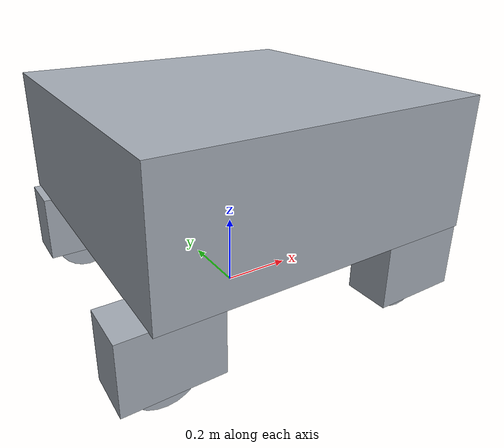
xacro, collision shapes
<?xml version="1.0" encoding="UTF-8"?>
<robot name="robot" xmlns:xacro="http://www.ros.org/wiki/xacro">

  <!-- ======================= 可覆盖参数 ======================= -->
  <xacro:arg name="use_mesh_collision" default="false"/>
  <xacro:arg name="controllers_file" default="$(find steer_wheel_chassis)/config/steer_wheel_controllers.yaml"/>

  <!-- Livox MID-360：默认装在车头 x=0.46, z=0.28，向下俯 13°（0.226893 rad） -->
  <xacro:arg name="use_mid360" default="true"/>
  <xacro:arg name="mid360_x" default="0.46"/>
  <xacro:arg name="mid360_y" default="0.0"/>
  <xacro:arg name="mid360_z" default="0.28"/>
  <xacro:arg name="mid360_pitch" default="0.226893"/>

  <xacro:property name="use_mesh_collision" value="$(arg use_mesh_collision)"/>
  <xacro:property name="controllers_file" value="$(arg controllers_file)"/>
  <xacro:property name="mesh_dir" value="package://steer_wheel_chassis/meshes"/>

  <!-- ======================= 物理参数 ======================= -->
  <!-- 质量 [kg]：按典型工业 AGV 取值（车体含内部电池/电控，转向节含减速器，车轮含轮毂电机） -->
  <xacro:property name="base_mass" value="25.0"/>
  <xacro:property name="leg_mass" value="2.0"/>
  <xacro:property name="wheel_mass" value="4.0"/>
  <!-- 整车 25 + 4×2 + 4×4 = 49 kg -->

  <!-- 车轮实测尺寸 [m] -->
  <xacro:property name="wheel_radius" value="0.0935"/>
  <xacro:property name="wheel_width" value="0.0449"/>
  <xacro:property name="wheel_tire_z" value="-0.0868"/>  <!-- 左前/左后轮胎面中心 (Link_5/7 系) -->

  <!--
    base_link 离地高度 = 四轮中心 z(-0.1594) 的相反数 + 轮半径 0.0935 = 0.2529 m
    实测仿真中轮胎着地时 base_link 为 0.2518（接触面层穿透 1 mm），吻合。
  -->
  <xacro:property name="ground_offset" value="0.2529"/>

  <!-- 关节驱动上限：转向 20 N·m / 3 rad/s，车轮 20 N·m / 20 rad/s (≈1.87 m/s) -->
  <xacro:property name="steer_effort" value="20.0"/>
  <xacro:property name="steer_velocity" value="3.0"/>
  <xacro:property name="wheel_effort" value="20.0"/>
  <xacro:property name="wheel_velocity" value="20.0"/>

  <!-- ======================= 通用宏 ======================= -->

  <!--
    惯性块。
    uixx/... = 单位质量惯性张量 [m²]，对 STL 三角网格做四面体积分、
    再平移到质心后得到，因此 ${uixx * mass} 就是该质量下的真实惯性张量。
    修改 mass 时惯性自动等比缩放，不用重新标定。
  -->
  <xacro:macro name="inertial" params="mass com uixx uixy uixz uiyy uiyz uizz">
    <inertial>
      <origin xyz="${com}" rpy="0 0 0"/>
      <mass value="${mass}"/>
      <inertia ixx="${uixx * mass}" ixy="${uixy * mass}" ixz="${uixz * mass}"
               iyy="${uiyy * mass}" iyz="${uiyz * mass}" izz="${uizz * mass}"/>
    </inertial>
  </xacro:macro>

  <xacro:macro name="mesh_geometry" params="name">
    <geometry>
      <mesh filename="${mesh_dir}/${name}.stl"/>
    </geometry>
  </xacro:macro>

  <!-- 视觉：原始 STL 网格 -->
  <xacro:macro name="mesh_visual" params="name">
    <visual>
      <origin xyz="0 0 0" rpy="0 0 0"/>
      <xacro:mesh_geometry name="${name}"/>
      <material name="robot_grey"/>
    </visual>
  </xacro:macro>

  <!--
    碰撞体：默认用简化体（快、稳定）；
    use_mesh_collision:=true 时改用原始 STL 三角网格（精确，但 15 MB 的 base_link
    网格会让 Gazebo 物理计算非常慢）。
  -->
  <xacro:macro name="box_collision" params="name xyz size">
    <collision>
      <xacro:if value="${use_mesh_collision}">
        <origin xyz="0 0 0" rpy="0 0 0"/>
        <xacro:mesh_geometry name="${name}"/>
      </xacro:if>
      <xacro:unless value="${use_mesh_collision}">
        <origin xyz="${xyz}" rpy="0 0 0"/>
        <geometry>
          <box size="${size}"/>
        </geometry>
      </xacro:unless>
    </collision>
  </xacro:macro>

  <xacro:macro name="cylinder_collision" params="name xyz radius length">
    <collision>
      <xacro:if value="${use_mesh_collision}">
        <origin xyz="0 0 0" rpy="0 0 0"/>
        <xacro:mesh_geometry name="${name}"/>
      </xacro:if>
      <xacro:unless value="${use_mesh_collision}">
        <origin xyz="${xyz}" rpy="0 0 0"/>
        <geometry>
          <cylinder radius="${radius}" length="${length}"/>
        </geometry>
      </xacro:unless>
    </collision>
  </xacro:macro>

  <!-- 车轮碰撞体：轮胎圆柱（半径 = 滚动半径，长度 = 胎面宽），轴向 local z = 轮轴 -->
  <xacro:macro name="tire_collision" params="name z">
    <xacro:cylinder_collision name="${name}" xyz="0 0 ${z}"
                              radius="${wheel_radius}" length="${wheel_width}"/>
  </xacro:macro>

  <!-- 转向关节（绕 z 轴旋转，限位 ±π） -->
  <xacro:macro name="steer_joint" params="name parent child xyz">
    <joint name="${name}" type="revolute">
      <parent link="${parent}"/>
      <child link="${child}"/>
      <origin xyz="${xyz}" rpy="0 0 -0.00000367"/>
      <axis xyz="0 0 1"/>
      <limit lower="-3.14159" upper="3.14159"
             effort="${steer_effort}" velocity="${steer_velocity}"/>
      <dynamics damping="0.2" friction="0.0"/>
    </joint>
  </xacro:macro>

  <!-- 车轮关节（continuous，可无限旋转） -->
  <xacro:macro name="wheel_joint" params="name parent child xyz rpy">
    <joint name="${name}" type="continuous">
      <parent link="${parent}"/>
      <child link="${child}"/>
      <origin xyz="${xyz}" rpy="${rpy}"/>
      <axis xyz="0 0 1"/>
      <limit effort="${wheel_effort}" velocity="${wheel_velocity}"/>
      <dynamics damping="0.05" friction="0.0"/>
    </joint>
  </xacro:macro>

  <!-- ======================= 材质 ======================= -->
  <material name="robot_grey">
    <color rgba="0.65 0.68 0.72 1.0"/>
  </material>

  <!-- ======================= 地面参考系 ======================= -->
  <!--
    base_footprint：base_link 在地面的投影，Nav2 / robot_localization 的惯例基准
    （odom -> base_footprint）。空 link（无惯性/几何，与 TurtleBot3 同样写法），
    同时避免 KDL 报 “root link base_link has an inertia” 警告。
  -->
  <link name="base_footprint"/>

  <joint name="base_joint" type="fixed">
    <parent link="base_footprint"/>
    <child link="base_link"/>
    <origin xyz="0 0 ${ground_offset}" rpy="0 0 0"/>
  </joint>

  <!-- ======================= 车体 ======================= -->
  <link name="base_link">
    <xacro:mesh_visual name="base_link"/>
    <!-- 网格包围盒：xy ±0.43，z ∈ [0, 0.346]；车体是框架壳体，用包围盒做包络 -->
    <xacro:box_collision name="base_link" xyz="0 0 0.173" size="0.86 0.86 0.346"/>
    <xacro:inertial mass="${base_mass}" com="0.0019 0.0055 0.1494"
                    uixx="0.069040" uixy="0.000129" uixz="0.000131"
                    uiyy="0.079193" uiyz="0.000725" uizz="0.116399"/>
  </link>

  <!-- ======================= 转向节 ======================= -->
  <link name="Link_1">
    <xacro:mesh_visual name="Link_1"/>
    <xacro:box_collision name="Link_1" xyz="0.0239 0.0148 -0.0945" size="0.2400 0.1246 0.1889"/>
    <xacro:inertial mass="${leg_mass}" com="0.0176 0.0310 -0.0703"
                    uixx="0.003065" uixy="-0.000103" uixz="0.000441"
                    uiyy="0.005054" uiyz="0.000548" uizz="0.003653"/>
  </link>

  <link name="Link_2">
    <xacro:mesh_visual name="Link_2"/>
    <xacro:box_collision name="Link_2" xyz="-0.0248 -0.0148 -0.0945" size="0.2399 0.1246 0.1889"/>
    <xacro:inertial mass="${leg_mass}" com="-0.0178 -0.0310 -0.0715"
                    uixx="0.003044" uixy="-0.000099" uixz="-0.000424"
                    uiyy="0.005028" uiyz="-0.000531" uizz="0.003650"/>
  </link>

  <link name="Link_3">
    <xacro:mesh_visual name="Link_3"/>
    <xacro:box_collision name="Link_3" xyz="0.0248 0.0148 -0.0945" size="0.2399 0.1246 0.1889"/>
    <xacro:inertial mass="${leg_mass}" com="0.0179 0.0310 -0.0715"
                    uixx="0.003042" uixy="-0.000099" uixz="0.000424"
                    uiyy="0.005022" uiyz="0.000529" uizz="0.003645"/>
  </link>

  <link name="Link_4">
    <xacro:mesh_visual name="Link_4"/>
    <xacro:box_collision name="Link_4" xyz="-0.0248 -0.0148 -0.0910" size="0.2399 0.1246 0.1747"/>
    <xacro:inertial mass="${leg_mass}" com="-0.0178 -0.0309 -0.0692"
                    uixx="0.002746" uixy="-0.000102" uixz="-0.000447"
                    uiyy="0.004773" uiyz="-0.000549" uizz="0.003762"/>
  </link>

  <!-- ======================= 车轮 ======================= -->
  <!-- 车轮网格在各自 link 系中沿 local z（= 轮轴方向）有偏心，质心/胎面位置逐个给出 -->
  <link name="Link_5">
    <xacro:mesh_visual name="Link_5"/>
    <xacro:tire_collision name="Link_5" z="${wheel_tire_z}"/>
    <xacro:inertial mass="${wheel_mass}" com="0 0 -0.0840"
                    uixx="0.002200" uixy="0.0" uixz="0.0"
                    uiyy="0.002201" uiyz="0.0" uizz="0.003437"/>
  </link>

  <link name="Link_6">
    <xacro:mesh_visual name="Link_6"/>
    <xacro:tire_collision name="Link_6" z="-0.0318"/>
    <xacro:inertial mass="${wheel_mass}" com="0 0 -0.0290"
                    uixx="0.002200" uixy="0.0" uixz="0.0"
                    uiyy="0.002201" uiyz="0.0" uizz="0.003437"/>
  </link>

  <link name="Link_7">
    <xacro:mesh_visual name="Link_7"/>
    <xacro:tire_collision name="Link_7" z="${wheel_tire_z}"/>
    <xacro:inertial mass="${wheel_mass}" com="0 0 -0.0840"
                    uixx="0.002200" uixy="0.0" uixz="0.0"
                    uiyy="0.002201" uiyz="0.0" uizz="0.003437"/>
  </link>

  <link name="Link_8">
    <xacro:mesh_visual name="Link_8"/>
    <xacro:tire_collision name="Link_8" z="-0.0299"/>
    <xacro:inertial mass="${wheel_mass}" com="0 0 -0.0321"
                    uixx="0.002209" uixy="0.0" uixz="0.0"
                    uiyy="0.002193" uiyz="0.0" uizz="0.003403"/>
  </link>

  <!-- ======================= 关节（origins 与原始 URDF 完全一致） ======================= -->
  <xacro:steer_joint name="left_front"   parent="base_link" child="Link_1" xyz="0.35500122 0.33499869 0.002"/>
  <xacro:steer_joint name="right_front"  parent="base_link" child="Link_2" xyz="0.35499878 -0.33500131 0.002"/>
  <xacro:steer_joint name="left_behind"  parent="base_link" child="Link_3" xyz="-0.35499878 0.33500131 0.002"/>
  <xacro:steer_joint name="right_behind" parent="base_link" child="Link_4" xyz="-0.35500122 -0.33499869 0.0056183"/>

  <xacro:wheel_joint name="Joint_5" parent="Link_1" child="Link_5"
                     xyz="0.02232944 -0.08710001 -0.16140002" rpy="0 -1.57079633 1.57079633"/>
  <xacro:wheel_joint name="Joint_6" parent="Link_2" child="Link_6"
                     xyz="-0.02232944 0.03210001 -0.16140002" rpy="0 1.57079633 1.57079633"/>
  <xacro:wheel_joint name="Joint_7" parent="Link_3" child="Link_7"
                     xyz="0.02232944 -0.08710001 -0.16140002" rpy="0 -1.57079633 1.57079633"/>
  <xacro:wheel_joint name="Joint_8" parent="Link_4" child="Link_8"
                     xyz="-0.02232944 -0.02960001 -0.16501833" rpy="0 -1.57079633 1.57079633"/>

  <!-- ======================= Gazebo / ros2_control ======================= -->
  <xacro:include filename="steer_wheel_chassis.gazebo.xacro"/>
  <xacro:include filename="steer_wheel_chassis.ros2_control.xacro"/>

  <!-- 车头 MID-360（use_mid360:=false 可关闭） -->
  <xacro:if value="$(arg use_mid360)">
    <xacro:include filename="steer_wheel_chassis.mid360.xacro"/>
  </xacro:if>

</robot>

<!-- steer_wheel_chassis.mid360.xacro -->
<robot xmlns:xacro="http://ros.org/wiki/xacro">

  <xacro:property name="mid360_mass" value="0.1"/>
  <xacro:property name="mid360_size" value="0.1 0.06 0.06"/>
  <xacro:property name="mid360_min_range" value="0.1"/>
  <xacro:property name="mid360_max_range" value="200.0"/>
  <xacro:property name="mid360_samples" value="10000"/>
  <xacro:property name="mid360_resolution" value="0.002"/>
  <xacro:property name="mid360_noise_stddev" value="0.01"/>

  <link name="mid360">
    <inertial>
      <origin xyz="0 0 0" rpy="${pi/2} 0 ${pi/2}"/>
      <mass value="${mid360_mass}"/>
      <inertia ixx="0.00011333" ixy="0" ixz="0"
               iyy="0.00011333" iyz="0" izz="0.00006"/>
    </inertial>
    <visual>
      <origin xyz="0 0 0" rpy="0 0 0"/>
      <geometry>
        <box size="${mid360_size}"/>
      </geometry>
      <material name="robot_grey"/>
    </visual>
  </link>

  <joint name="mid360_joint" type="fixed">
    <parent link="base_link"/>
    <child link="mid360"/>
    <origin xyz="$(arg mid360_x) $(arg mid360_y) $(arg mid360_z)"
            rpy="0 $(arg mid360_pitch) 0"/>
  </joint>

  <gazebo reference="mid360">
    <sensor type="ray" name="mid360">
      <pose>0 0 0 0 0 0</pose>
      <always_on>true</always_on>
      <visualize>true</visualize>
      <update_rate>10</update_rate>
      <plugin name="mid360_plugin" filename="libros2_livox.so">
        <ray>
          <scan>
            <horizontal>
              <samples>100</samples>
              <resolution>1</resolution>
              <min_angle>0</min_angle>
              <max_angle>${2*pi}</max_angle>
            </horizontal>
            <vertical>
              <samples>360</samples>
              <resolution>1</resolution>
              <min_angle>${-7.22/180*pi}</min_angle>
              <max_angle>${55.22/180*pi}</max_angle>
            </vertical>
          </scan>
          <range>
            <min>${mid360_min_range}</min>
            <max>${mid360_max_range}</max>
            <resolution>${mid360_resolution}</resolution>
          </range>
          <noise>
            <type>gaussian</type>
            <mean>0.0</mean>
            <stddev>${mid360_noise_stddev}</stddev>
          </noise>
        </ray>
        <visualize>false</visualize>
        <samples>${mid360_samples}</samples>
        <downsample>1</downsample>
        <csv_file_name>$(find ros2_livox_simulation)/scan_mode/mid360.csv</csv_file_name>
        <topic>mid360</topic>
      </plugin>
    </sensor>
  </gazebo>

</robot>
